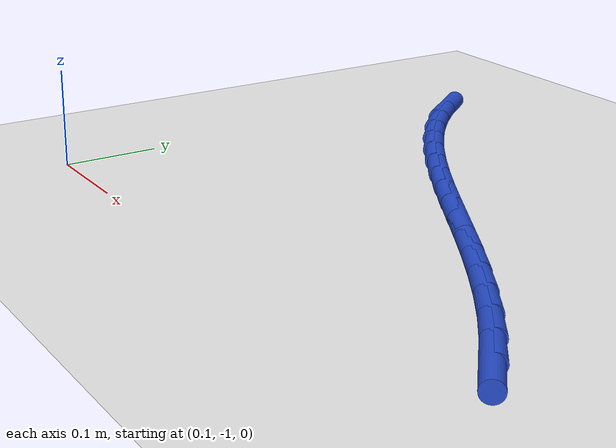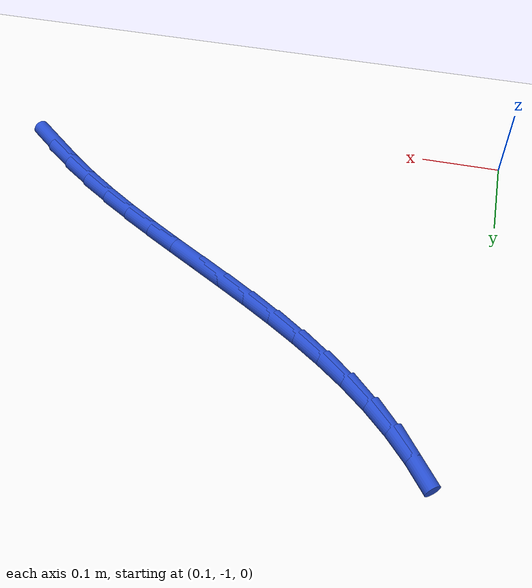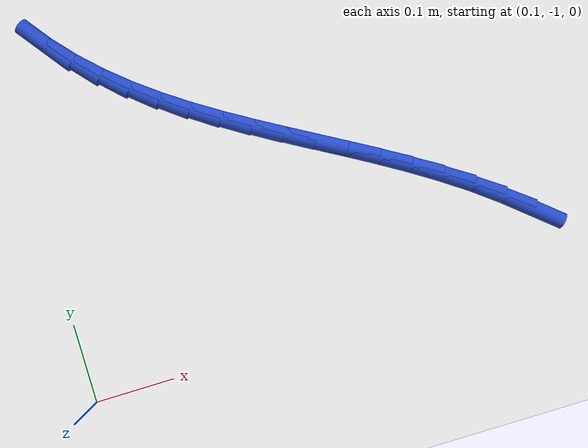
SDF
<sdf version="1.6">
 <world name="default">
  <model name="ground_plane">
   <static>1</static>
   <link name="link">
    <collision name="collision">
     <geometry><plane><normal>0 0 1</normal><size>100 100</size></plane></geometry>
     <surface><friction><ode><mu>100</mu><mu2>50</mu2></ode></friction></surface>
    </collision>
    <visual name="visual">
     <cast_shadows>0</cast_shadows>
     <geometry><plane><normal>0 0 1</normal><size>100 100</size></plane></geometry>
     <material>
      <script><uri>file://media/materials/scripts/gazebo.material</uri><name>Gazebo/WhiteGlow</name></script>
     </material>
    </visual>
   </link>
  </model>
  <model name="line">
   <link name="link_179">
    <pose>0.6859590053992864 -0.92498706640902 0.01 0 1.57 -0.7018940762146476</pose>
    <collision name="collision">
     <geometry><cylinder><radius>0.01</radius><length>0.08</length></cylinder></geometry>
    </collision>
    <visual name="visual">
     <material>
      <script><name>Gazebo/Blue</name><uri>file://media/materials/scripts/gazebo.material</uri></script>
     </material>
     <geometry><cylinder><radius>0.01</radius><length>0.08</length></cylinder></geometry>
    </visual>
   </link>
   <link name="link_180">
    <pose>0.6556589036173113 -0.899367379348988 0.01 0 1.57 -0.6565947003304354</pose>
    <collision name="collision">
     <geometry><cylinder><radius>0.01</radius><length>0.08</length></cylinder></geometry>
    </collision>
    <visual name="visual">
     <material>
      <script><name>Gazebo/Blue</name><uri>file://media/materials/scripts/gazebo.material</uri></script>
     </material>
     <geometry><cylinder><radius>0.01</radius><length>0.08</length></cylinder></geometry>
    </visual>
   </link>
   <link name="link_181">
    <pose>0.6241656463056898 -0.875096696523928 0.01 0 1.57 -0.610799092854502</pose>
    <collision name="collision">
     <geometry><cylinder><radius>0.01</radius><length>0.08</length></cylinder></geometry>
    </collision>
    <visual name="visual">
     <material>
      <script><name>Gazebo/Blue</name><uri>file://media/materials/scripts/gazebo.material</uri></script>
     </material>
     <geometry><cylinder><radius>0.01</radius><length>0.08</length></cylinder></geometry>
    </visual>
   </link>
   <link name="link_182">
    <pose>0.5914833543371941 -0.85221553085495 0.01 0 1.57 -0.5743351538951179</pose>
    <collision name="collision">
     <geometry><cylinder><radius>0.01</radius><length>0.08</length></cylinder></geometry>
    </collision>
    <visual name="visual">
     <material>
      <script><name>Gazebo/Blue</name><uri>file://media/materials/scripts/gazebo.material</uri></script>
     </material>
     <geometry><cylinder><radius>0.01</radius><length>0.08</length></cylinder></geometry>
    </visual>
   </link>
   <link name="link_183">
    <pose>0.5578595926878374 -0.8304575326832307 0.01 0 1.57 -0.5470474721299594</pose>
    <collision name="collision">
     <geometry><cylinder><radius>0.01</radius><length>0.08</length></cylinder></geometry>
    </collision>
    <visual name="visual">
     <material>
      <script><name>Gazebo/Blue</name><uri>file://media/materials/scripts/gazebo.material</uri></script>
     </material>
     <geometry><cylinder><radius>0.01</radius><length>0.08</length></cylinder></geometry>
    </visual>
   </link>
   <link name="link_184">
    <pose>0.5235419263417489 -0.8095563523397209 0.01 0 1.57 -0.5287547174262555</pose>
    <collision name="collision">
     <geometry><cylinder><radius>0.01</radius><length>0.08</length></cylinder></geometry>
    </collision>
    <visual name="visual">
     <material>
      <script><name>Gazebo/Blue</name><uri>file://media/materials/scripts/gazebo.material</uri></script>
     </material>
     <geometry><cylinder><radius>0.01</radius><length>0.08</length></cylinder></geometry>
    </visual>
   </link>
   <link name="link_185">
    <pose>0.48877792028305495 -0.7892456401553698 0.01 0 1.57 -0.5193156095051812</pose>
    <collision name="collision">
     <geometry><cylinder><radius>0.01</radius><length>0.08</length></cylinder></geometry>
    </collision>
    <visual name="visual">
     <material>
      <script><name>Gazebo/Blue</name><uri>file://media/materials/scripts/gazebo.material</uri></script>
     </material>
     <geometry><cylinder><radius>0.01</radius><length>0.08</length></cylinder></geometry>
    </visual>
   </link>
   <link name="link_186">
    <pose>0.45381513949588287 -0.7692590464611273 0.01 0 1.57 -0.5186703916089703</pose>
    <collision name="collision">
     <geometry><cylinder><radius>0.01</radius><length>0.08</length></cylinder></geometry>
    </collision>
    <visual name="visual">
     <material>
      <script><name>Gazebo/Blue</name><uri>file://media/materials/scripts/gazebo.material</uri></script>
     </material>
     <geometry><cylinder><radius>0.01</radius><length>0.08</length></cylinder></geometry>
    </visual>
   </link>
   <link name="link_187">
    <pose>0.41890114896436004 -0.749330221587943 0.01 0 1.57 -0.5268619929414171</pose>
    <collision name="collision">
     <geometry><cylinder><radius>0.01</radius><length>0.08</length></cylinder></geometry>
    </collision>
    <visual name="visual">
     <material>
      <script><name>Gazebo/Blue</name><uri>file://media/materials/scripts/gazebo.material</uri></script>
     </material>
     <geometry><cylinder><radius>0.01</radius><length>0.08</length></cylinder></geometry>
    </visual>
   </link>
   <link name="link_188">
    <pose>0.3842835136726136 -0.7291928158667669 0.01 0 1.57 -0.5440392767710726</pose>
    <collision name="collision">
     <geometry><cylinder><radius>0.01</radius><length>0.08</length></cylinder></geometry>
    </collision>
    <visual name="visual">
     <material>
      <script><name>Gazebo/Blue</name><uri>file://media/materials/scripts/gazebo.material</uri></script>
     </material>
     <geometry><cylinder><radius>0.01</radius><length>0.08</length></cylinder></geometry>
    </visual>
   </link>
   <link name="link_189">
    <pose>0.3502097986047703 -0.7085804796285482 0.01 0 1.57 -0.5704418585011097</pose>
    <collision name="collision">
     <geometry><cylinder><radius>0.01</radius><length>0.08</length></cylinder></geometry>
    </collision>
    <visual name="visual">
     <material>
      <script><name>Gazebo/Blue</name><uri>file://media/materials/scripts/gazebo.material</uri></script>
     </material>
     <geometry><cylinder><radius>0.01</radius><length>0.08</length></cylinder></geometry>
    </visual>
   </link>
   <link name="link_190">
    <pose>0.316927568744959 -0.6872268632042376 0.01 0 1.57 -0.6063628039036578</pose>
    <collision name="collision">
     <geometry><cylinder><radius>0.01</radius><length>0.08</length></cylinder></geometry>
    </collision>
    <visual name="visual">
     <material>
      <script><name>Gazebo/Blue</name><uri>file://media/materials/scripts/gazebo.material</uri></script>
     </material>
     <geometry><cylinder><radius>0.01</radius><length>0.08</length></cylinder></geometry>
    </visual>
   </link>
   <link name="link_191">
    <pose>0.28468438907730625 -0.6648656169247847 0.01 0 1.57 -0.6520830022021237</pose>
    <collision name="collision">
     <geometry><cylinder><radius>0.01</radius><length>0.08</length></cylinder></geometry>
    </collision>
    <visual name="visual">
     <material>
      <script><name>Gazebo/Blue</name><uri>file://media/materials/scripts/gazebo.material</uri></script>
     </material>
     <geometry><cylinder><radius>0.01</radius><length>0.08</length></cylinder></geometry>
    </visual>
   </link>
   <link name="link_192">
    <pose>0.2537278245859391 -0.6412303911211389 0.01 0 1.57 -0.7077707753191029</pose>
    <collision name="collision">
     <geometry><cylinder><radius>0.01</radius><length>0.08</length></cylinder></geometry>
    </collision>
    <visual name="visual">
     <material>
      <script><name>Gazebo/Blue</name><uri>file://media/materials/scripts/gazebo.material</uri></script>
     </material>
     <geometry><cylinder><radius>0.01</radius><length>0.08</length></cylinder></geometry>
    </visual>
   </link>
   <link name="link_193">
    <pose>0.22430544025498536 -0.6160548361242502 0.01 0 1.57 -0.7733450910013066</pose>
    <collision name="collision">
     <geometry><cylinder><radius>0.01</radius><length>0.08</length></cylinder></geometry>
    </collision>
    <visual name="visual">
     <material>
      <script><name>Gazebo/Blue</name><uri>file://media/materials/scripts/gazebo.material</uri></script>
     </material>
     <geometry><cylinder><radius>0.01</radius><length>0.08</length></cylinder></geometry>
    </visual>
   </link>
   <link name="link_194">
    <pose>0.19666480106857193 -0.5890726022650684 0.01 0 1.57 -0.8483102005054639</pose>
    <collision name="collision">
     <geometry><cylinder><radius>0.01</radius><length>0.08</length></cylinder></geometry>
    </collision>
    <visual name="visual">
     <material>
      <script><name>Gazebo/Blue</name><uri>file://media/materials/scripts/gazebo.material</uri></script>
     </material>
     <geometry><cylinder><radius>0.01</radius><length>0.08</length></cylinder></geometry>
    </visual>
   </link>
   <link name="link_195">
    <pose>0.17105339737887887 -0.5600174709600927 0.01 0 1.57 -0.9279824193162325</pose>
    <collision name="collision">
     <geometry><cylinder><radius>0.01</radius><length>0.08</length></cylinder></geometry>
    </collision>
    <visual name="visual">
     <material>
      <script><name>Gazebo/Blue</name><uri>file://media/materials/scripts/gazebo.material</uri></script>
     </material>
     <geometry><cylinder><radius>0.01</radius><length>0.08</length></cylinder></geometry>
    </visual>
   </link>
  </model>
 </world>
</sdf>
